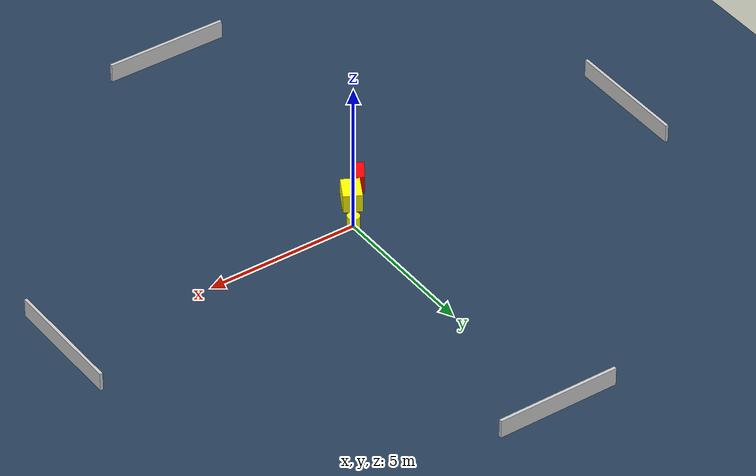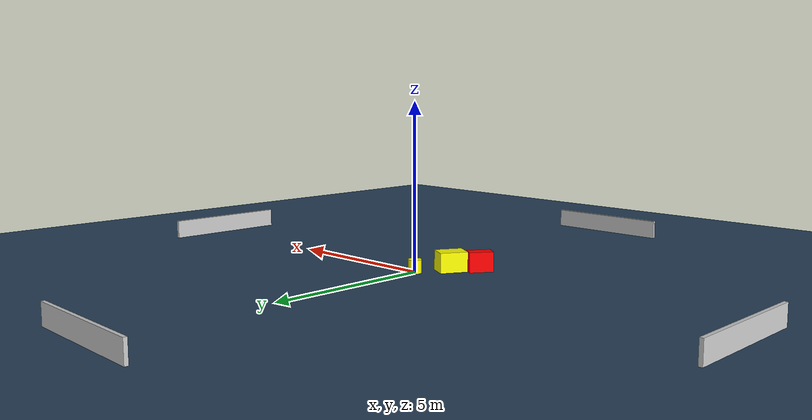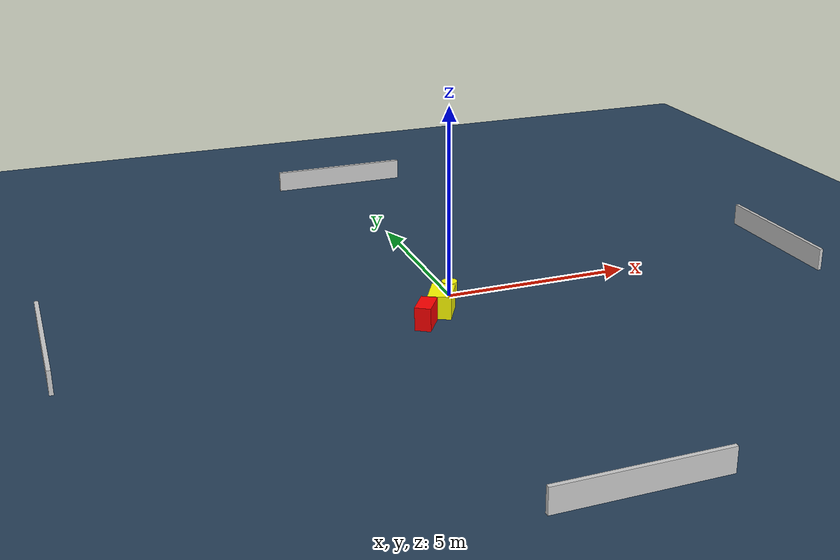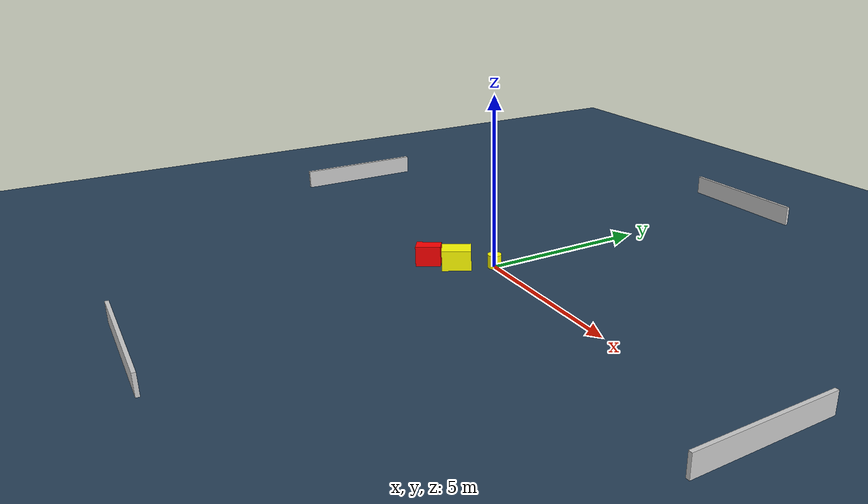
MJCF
<?xml version="1.0" ?>
<mujoco model="generated_environment">
  <option timestep="0.01" integrator="RK4" cone="elliptic"/>
  <default>
    <geom density="1"/>
  </default>
  <asset>
    <texture builtin="gradient" height="3072" name="skybox" rgb1="0.3 0.5 0.7" rgb2="0 0 0" type="skybox" width="512"/>
    <texture builtin="checker" height="300" name="groundplane" rgb1="0.2 0.3 0.4" rgb2="0.1 0.2 0.3" type="2d" width="300"/>
    <material name="groundplane" reflectance="0.2" texrepeat="5 5" texture="groundplane"/>
  </asset>
  <worldbody>
    <light dir="0 0 -1" directional="true" pos="0 0 1.5"/>
    <geom condim="3" friction="0.5 0.005 0.001" material="groundplane" name="floor" pos="0 0 0" size="0 0 0.05" type="plane"/>
    <body name="walls">
      <geom name="wall_1" condim="4" pos="-10.0 0.0 0.3" rgba="0.800000011920929 0.800000011920929 0.800000011920929 1.0" size="0.05 2.0 0.3" type="box"/>
      <geom name="wall_2" condim="4" pos="10.0 0.0 0.3" rgba="0.800000011920929 0.800000011920929 0.800000011920929 1.0" size="0.05 2.0 0.3" type="box"/>
      <geom name="wall_3" condim="4" pos="0.0 -10.0 0.3" rgba="0.800000011920929 0.800000011920929 0.800000011920929 1.0" size="2.0 0.05 0.3" type="box"/>
      <geom name="wall_4" condim="4" pos="0.0 10.0 0.3" rgba="0.800000011920929 0.800000011920929 0.800000011920929 1.0" size="2.0 0.05 0.3" type="box"/>
    </body>
    <body name="robot">
      <joint name="joint_x" type="slide" pos="0 0 0" axis="1 0 0"/>
      <joint name="joint_y" type="slide" pos="0 0 0" axis="0 1 0"/>
      <geom name="robot" type="cylinder" pos="0.0 0.0 0.2" size="0.2 0.2 0.0" mass="5.0" friction="1.0 0.005 0.0001" condim="4" rgba="1.0 1.0 0.0 1.0"/>
    </body>
    <body name="obstacle_1_movable">
      <geom name="obstacle_1_movable" condim="4" pos="-0.5724999427908884 -0.9330222507395345 0.3" euler="0 0 61.34071304434894" friction="0.0 0.005 0.001" rgba="1.0 1.0 0.0 1.0" size="0.4222056042711426 0.29636927661899626 0.3" type="box" mass="0.1"/>
      <joint type="free"/>
    </body>
    <body name="obstacle_2_static">
      <geom name="obstacle_2_static" condim="4" pos="-1.1959817204506167 -1.5115652000433002 0.3" euler="0 0 326.7383789563316" friction="0.0 0.005 0.001" rgba="1.0 0.0 0.0 1.0" size="0.20425711332058016 0.36302401403834494 0.3" type="box"/>
    </body>
  </worldbody>
  <actuator>
    <motor name="actuator_x" joint="joint_x" gear="1" ctrlrange="-1 1"/>
    <motor name="actuator_y" joint="joint_y" gear="1" ctrlrange="-1 1"/>
  </actuator>
</mujoco>
